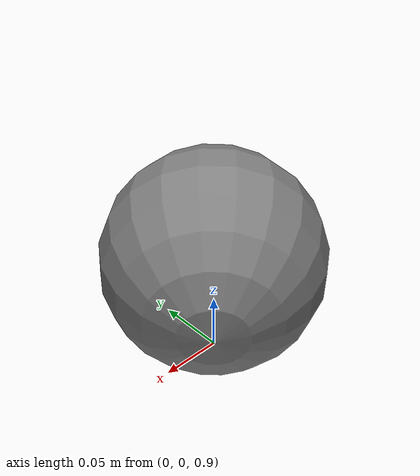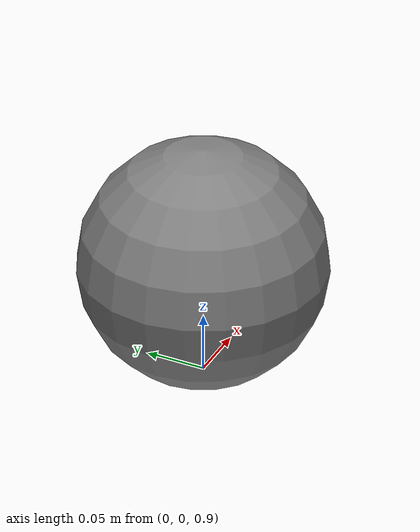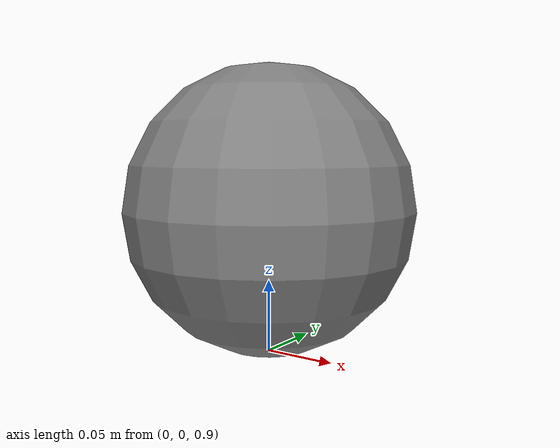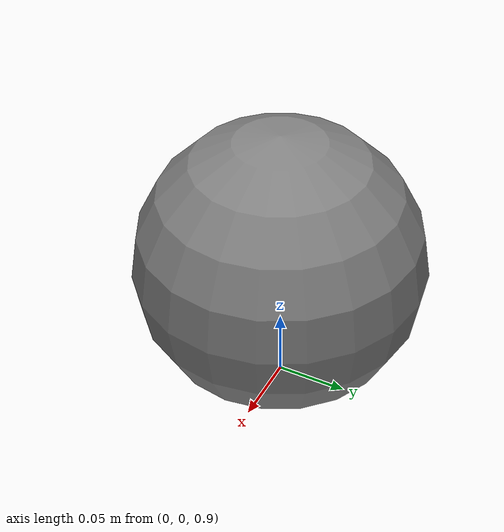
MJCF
<mujoco>
            <worldbody>
                <body name="b1" pos="0 0 1" user="10">
                    <joint name="j1" type="hinge" axis="0 1 0" user="20 21"/>
                    <inertial pos="0 0 0" mass="1" diaginertia="1 1 1"/>
                    <geom name="g1" type="sphere" size="0.1" user="30 31 32"/>
                    <site name="s1" pos="0 0 0" user="40"/>
                </body>
            </worldbody>
            <tendon>
                <fixed name="t1" user="50 51">
                    <joint joint="j1" coef="1"/>
                </fixed>
            </tendon>
            <actuator>
                <motor name="a1" joint="j1" user="60 61 62 63"/>
            </actuator>
            <sensor>
                <jointpos joint="j1" user="70 71"/>
            </sensor>
            </mujoco>
